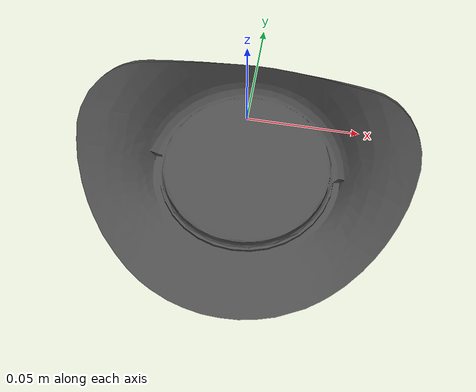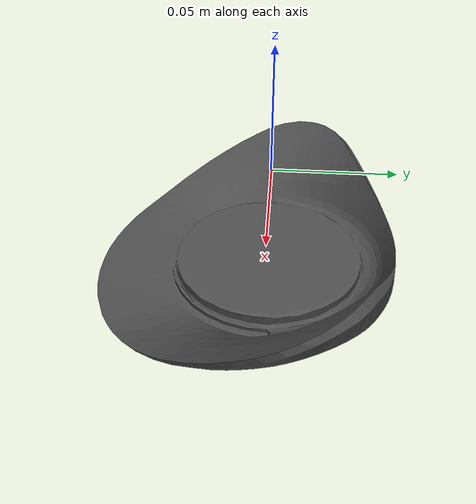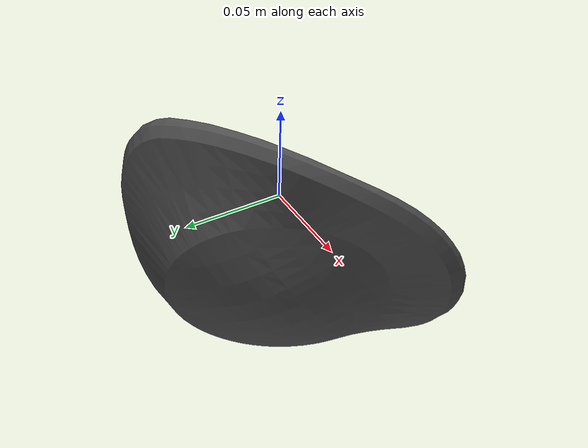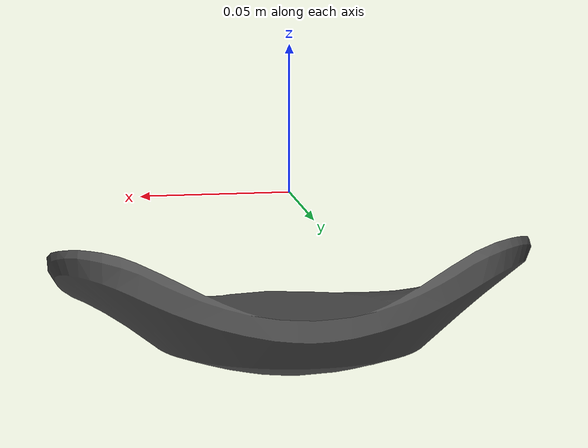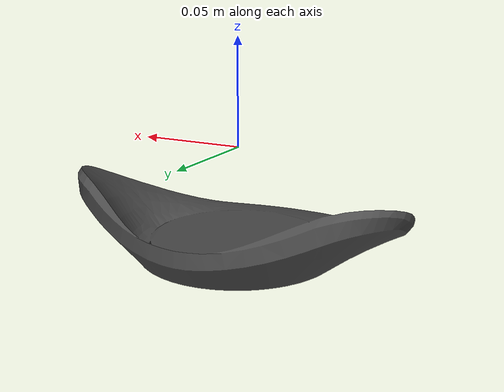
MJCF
<mujoco model="arm_cover_link">
  <default>
    <default class="visual">
      <geom group="2" type="mesh" contype="0" conaffinity="0"/>
    </default>
    <default class="collision">
      <geom group="3" type="mesh"/>
    </default>
  </default>
  <asset>
    <material name="mtl_arm_cover_link" specular="0.20000000000000004" shininess="1.0" rgba="0.29803922 0.29803922 0.29803922 1.0"/>
    <mesh file="arm_cover_link.obj"/>
  </asset>
  <worldbody>
    <body name="arm_cover_link">
      <geom material="mtl_arm_cover_link" mesh="arm_cover_link" class="visual"/>
      <geom mesh="arm_cover_link" class="collision"/>
    </body>
  </worldbody>
</mujoco>
